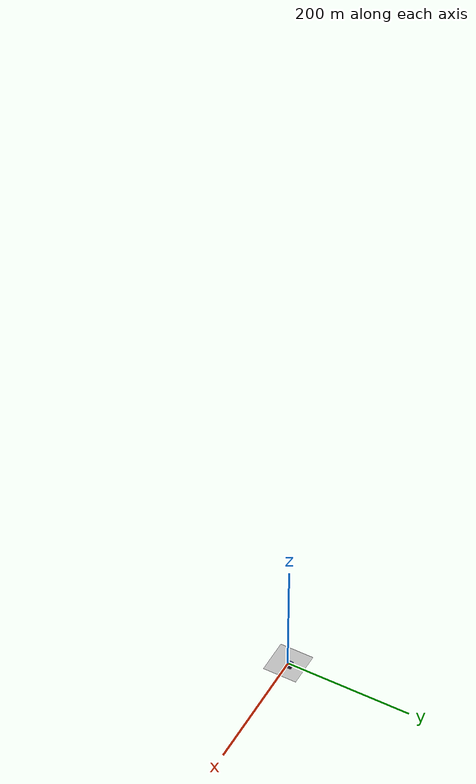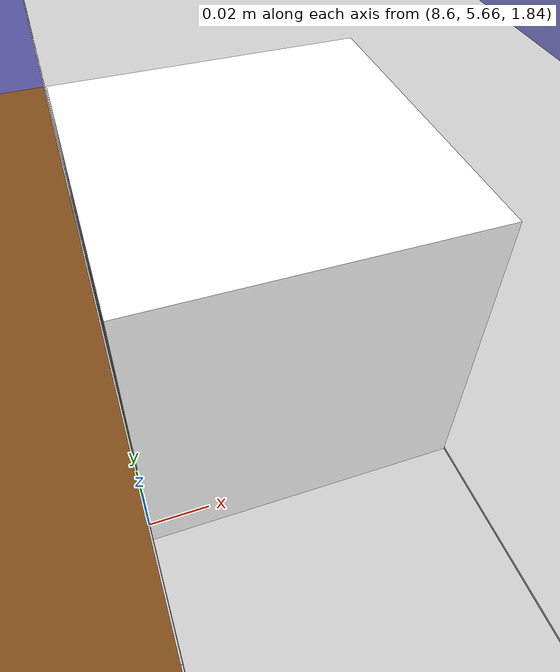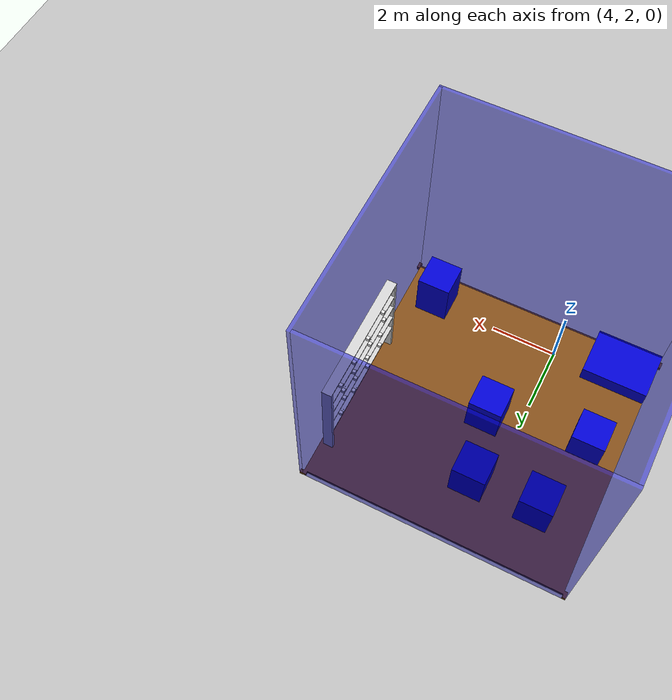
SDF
<?xml version="1.0" ?>
<?xml-model href="http://sdformat.org/schemas/root.xsd" schematypens="http://www.w3.org/2001/XMLSchema"?>
<sdf version="1.5">
  <world name="default">
    <plugin name="mrs_gazebo_static_transform_republisher_plugin" filename="libMrsGazeboCommonResources_StaticTransformRepublisher.so"/>
    <!-- coordinate system {-->
    <spherical_coordinates>
      <surface_model>EARTH_WGS84</surface_model>
      <latitude_deg>37.411802</latitude_deg>
      <longitude_deg>-121.995739</longitude_deg>
      <elevation>0.0</elevation>
      <heading_deg>0</heading_deg>
    </spherical_coordinates>

    <!-- physics engine {-->
    <physics name="default_physics" default="0" type="ode">
      <gravity>0 0 -9.8066</gravity>
      <ode>
        <solver>
          <type>quick</type>
          <iters>10</iters>
          <sor>1.3</sor>
          <use_dynamic_moi_rescaling>0</use_dynamic_moi_rescaling>
        </solver>
        <constraints>z
          <cfm>0</cfm>
          <erp>0.2</erp>
          <contact_max_correcting_vel>1000</contact_max_correcting_vel>
          <contact_surface_layer>0.001</contact_surface_layer>
        </constraints>
      </ode>
      <max_step_size>0.004</max_step_size>
      <real_time_factor>1</real_time_factor>
      <real_time_update_rate>250</real_time_update_rate>
      <magnetic_field>6.0e-06 2.3e-05 -4.2e-05</magnetic_field>
    </physics>

    <!-- turn off shadows {-->
    <scene>
      <shadows>false</shadows>
      <sky>
        <clouds/>
      </sky>
    </scene>

    <!-- sun {-->
    <light type="directional" name="sun">
      <cast_shadows>true</cast_shadows>
      <pose>250 250 600 0 0 0</pose>
      <diffuse>0.8 0.8 0.8 1</diffuse>
      <specular>0.2 0.2 0.2 1</specular>
      <attenuation>
        <range>1000</range>
        <constant>0.9</constant>
        <linear>0.01</linear>
        <quadratic>0.001</quadratic>
      </attenuation>
      <direction>0 0 -1</direction>
    </light>

    <!-- ground plane {-->
    <model name="ground_plane">
      <static>true</static>
      <link name="link">
        <collision name="collision">
          <pose>0 0 0 0 0 0</pose>
          <geometry>
            <plane>
              <normal>0 0 1</normal>
              <size>250 250</size>
            </plane>
          </geometry>
          <surface>
            <friction>
              <ode>
                <mu>1</mu>
                <mu2>1</mu2>
              </ode>
            </friction>
          </surface>
        </collision>
        <visual name="grass">
          <pose>0 0 0 0 0 0</pose>
          <cast_shadows>false</cast_shadows>
          <geometry>
            <mesh>
              <uri>file://grass_plane/meshes/grass_plane.dae</uri>
            </mesh>
          </geometry>
        </visual>
        <enable_wind>0</enable_wind>
      </link>
    </model>

    <!--THE ARENA MODEL -->
      <include >
        <uri>model://arena2</uri >
        <!--Pose ( x y z r p y ) -->
        <pose frame=''>1 1 0.0005 0 -0 0</pose >
      </include>

    <!-- THE VOID (for spawning objects out of camera view) {-->
    <model name='the_void'>
      <static>1</static>
      <link name='link'>
        <pose frame=''>0 0 0.1 0 -0 0</pose>
        <visual name='the_void'>
          <pose frame=''>0 0 2 0 -0 0</pose>
          <geometry>
            <sphere>
              <radius>0.25</radius>
            </sphere>
          </geometry>
          <material>
            <script>
              <uri>file://media/materials/scripts/Gazebo.material</uri>
              <name>Gazebo/Black</name>
            </script>
          </material>
        </visual>
        <self_collide>0</self_collide>
        <enable_wind>0</enable_wind>
        <kinematic>0</kinematic>
      </link>
      <pose frame=''>-1000 -1000 0 0 0 0</pose>
    </model>

    <!-- user camera {-->
    <gui>
      <camera name="camera">
        <pose>-60 -100 30 0 0.4 0.89</pose>
      </camera>
    </gui>

    <!-- GUI frame synchronization {-->
    <plugin name="mrs_gazebo_rviz_cam_synchronizer" filename="libMrsGazeboCommonResources_RvizCameraSynchronizer.so" >
      <target_frame_id>gazebo_user_camera</target_frame_id>
      <world_origin_frame_id>uav1/gps_origin</world_origin_frame_id>
      <frame_to_follow>uav1::base_link</frame_to_follow>
    </plugin>

    <!-- Load the plugin for the wind -->
    <plugin name='wind' filename='libgazebo_wind_plugin.so'>
      <frameId>base_link</frameId>
      <robotNamespace/>
      <xyzOffset>0 0 0</xyzOffset>
      <winDirectionMean>0 1 0</winDirectionMean>
      <windVelocityMean>20.0</windVelocityMean>
      <windGustDirection>0 0 0</windGustDirection>
      <windGustDuration>0</windGustDuration>
      <windGustStart>0</windGustStart>
      <windGustVelocityMean>0</windGustVelocityMean>
      <windPubTopic>world_wind</windPubTopic>
    </plugin>
  </world>
</sdf>

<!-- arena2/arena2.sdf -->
<sdf version='1.7'>
  <model name='arena2'>
    <link name='base_link'>
      <inertial>
        <pose>3.88372 3.91269 2.85219 0 -0 0</pose>
        <mass>322185</mass>
        <inertia>
          <ixx>4.96134e+06</ixx>
          <ixy>27988</ixy>
          <ixz>-115325</ixz>
          <iyy>5.04516e+06</iyy>
          <iyz>-82399.4</iyz>
          <izz>5.7618e+06</izz>
        </inertia>
      </inertial>
      <collision name='base_link_collision_collision'>
        <pose>0 0 0 0 -0 0</pose>
        <geometry>
          <mesh>
            <scale>0.001 0.001 0.001</scale>
            <uri>meshes/base_link.stl</uri>
          </mesh>
        </geometry>
      </collision>
      <collision name='base_link_fixed_joint_lump__piso_collision_collision_1'>
        <pose>-0 -0 0.1 -0 -0 0</pose>
        <geometry>
          <mesh>
            <scale>0.001 0.001 0.001</scale>
            <uri>meshes/piso.stl</uri>
          </mesh>
        </geometry>
      </collision>
      <collision name='base_link_fixed_joint_lump__base_movel_3_collision_collision_2'>
        <pose>-0.2 0.1 0.1 -0 -0 -0</pose>
        <geometry>
          <mesh>
            <scale>0.001 0.001 0.001</scale>
            <uri>meshes/base_movel_3.stl</uri>
          </mesh>
        </geometry>
      </collision>
      <collision name='base_link_fixed_joint_lump__base_movel_2_collision_collision_3'>
        <pose>-0.1 -0.1 0.1001 -0 -0 -0</pose>
        <geometry>
          <mesh>
            <scale>0.001 0.001 0.001</scale>
            <uri>meshes/base_movel_2.stl</uri>
          </mesh>
        </geometry>
      </collision>
      <collision name='base_link_fixed_joint_lump__Base_movel_1_collision_collision_4'>
        <pose>-0.1 -0.1 0.1001 -0 -0 -0</pose>
        <geometry>
          <mesh>
            <scale>0.001 0.001 0.001</scale>
            <uri>meshes/Base_movel_1.stl</uri>
          </mesh>
        </geometry>
      </collision>
      <collision name='base_link_fixed_joint_lump__Base_suspensa_1.5_collision_collision_5'>
        <pose>-0.1 -0.1 0.099 -0 -0 -0</pose>
        <geometry>
          <mesh>
            <scale>0.001 0.001 0.001</scale>
            <uri>meshes/Base_suspensa_1.5.stl</uri>
          </mesh>
        </geometry>
      </collision>
      <collision name='base_link_fixed_joint_lump__base_supensa_1.0_collision_collision_6'>
        <pose>-0.1 -0.1 0.099 -0 -0 -0</pose>
        <geometry>
          <mesh>
            <scale>0.001 0.001 0.001</scale>
            <uri>meshes/base_supensa_1.0.stl</uri>
          </mesh>
        </geometry>
      </collision>
      <collision name='base_link_fixed_joint_lump__prateleira_collision_collision_7'>
        <pose>0 0 0 -0 0 0</pose>
        <geometry>
          <mesh>
            <scale>0.001 0.001 0.001</scale>
            <uri>meshes/prateleira.stl</uri>
          </mesh>
        </geometry>
      </collision>
      <collision name='base_link_fixed_joint_lump__cubo_A2_collision_collision_8'>
        <pose>6.3 11.1 -6.351 -3.14159 -1.5708 0</pose>
        <geometry>
          <mesh>
            <scale>0.001 0.001 0.001</scale>
            <uri>meshes/cubo_A2.stl</uri>
          </mesh>
        </geometry>
      </collision>
      <collision name='base_link_fixed_joint_lump__cubo_A2b_collision_collision_9'>
        <pose>-0.1 -0.1 0.1 0 -0 -0</pose>
        <geometry>
          <mesh>
            <scale>0.001 0.001 0.001</scale>
            <uri>meshes/cubo_A2b.stl</uri>
          </mesh>
        </geometry>
      </collision>
      <collision name='base_link_fixed_joint_lump__cubo_A3_collision_collision_10'>
        <pose>6.3 12.7 -6.351 -3.14159 -1.5708 0</pose>
        <geometry>
          <mesh>
            <scale>0.001 0.001 0.001</scale>
            <uri>meshes/cubo_A3.stl</uri>
          </mesh>
        </geometry>
      </collision>
      <collision name='base_link_fixed_joint_lump__cubo_A3b_collision_collision_11'>
        <pose>-0.1 -0.100169 0.1 -0 -0 -0</pose>
        <geometry>
          <mesh>
            <scale>0.001 0.001 0.001</scale>
            <uri>meshes/cubo_A3b.stl</uri>
          </mesh>
        </geometry>
      </collision>
      <collision name='base_link_fixed_joint_lump__cubo_A0_collision_collision_12'>
        <pose>-0 -0 -0.051 -0 0 0</pose>
        <geometry>
          <mesh>
            <scale>0.001 0.001 0.001</scale>
            <uri>meshes/cubo_A0.stl</uri>
          </mesh>
        </geometry>
      </collision>
      <collision name='base_link_fixed_joint_lump__cubo_A0b_collision_collision_13'>
        <pose>-0.1 -0.1002 0.1 -0 0 -0</pose>
        <geometry>
          <mesh>
            <scale>0.001 0.001 0.001</scale>
            <uri>meshes/cubo_A0b.stl</uri>
          </mesh>
        </geometry>
      </collision>
      <collision name='base_link_fixed_joint_lump__cubo_A1_collision_collision_14'>
        <pose>6.3 9.3 -6.351 -3.14159 -1.5708 0</pose>
        <geometry>
          <mesh>
            <scale>0.001 0.001 0.001</scale>
            <uri>meshes/cubo_A1.stl</uri>
          </mesh>
        </geometry>
      </collision>
      <collision name='base_link_fixed_joint_lump__cubo_A1b_collision_collision_15'>
        <pose>-0.1 -0.10016 0.1 -0 -0 -0</pose>
        <geometry>
          <mesh>
            <scale>0.001 0.001 0.001</scale>
            <uri>meshes/cubo_A1b.stl</uri>
          </mesh>
        </geometry>
      </collision>
      <collision name='base_link_fixed_joint_lump__cubo_B0_collision_collision_16'>
        <pose>5.75 12.3 -5.751 -3.14159 -1.5708 0</pose>
        <geometry>
          <mesh>
            <scale>0.001 0.001 0.001</scale>
            <uri>meshes/cubo_B0.stl</uri>
          </mesh>
        </geometry>
      </collision>
      <collision name='base_link_fixed_joint_lump__cubo_B0b_collision_collision_17'>
        <pose>-0.1 -0.100182 0.1 0 -0 -0</pose>
        <geometry>
          <mesh>
            <scale>0.001 0.001 0.001</scale>
            <uri>meshes/cubo_B0b.stl</uri>
          </mesh>
        </geometry>
      </collision>
      <collision name='base_link_fixed_joint_lump__cubo_B1_collision_collision_18'>
        <pose>5.75 10.9 -5.751 -3.14159 -1.5708 0</pose>
        <geometry>
          <mesh>
            <scale>0.001 0.001 0.001</scale>
            <uri>meshes/cubo_B1.stl</uri>
          </mesh>
        </geometry>
      </collision>
      <collision name='base_link_fixed_joint_lump__cubo_B1b_collision_collision_19'>
        <pose>-0.1 -0.100186 0.1 0 -0 -0</pose>
        <geometry>
          <mesh>
            <scale>0.001 0.001 0.001</scale>
            <uri>meshes/cubo_B1b.stl</uri>
          </mesh>
        </geometry>
      </collision>
      <collision name='base_link_fixed_joint_lump__cubo_B2_collision_collision_20'>
        <pose>9.55 -0 -5.751 0 -1.5708 0</pose>
        <geometry>
          <mesh>
            <scale>0.001 0.001 0.001</scale>
            <uri>meshes/cubo_B2.stl</uri>
          </mesh>
        </geometry>
      </collision>
      <collision name='base_link_fixed_joint_lump__cubo_B2b_collision_collision_21'>
        <pose>-0.1 -0.100213 0.1 -0 0 -0</pose>
        <geometry>
          <mesh>
            <scale>0.001 0.001 0.001</scale>
            <uri>meshes/cubo_B2b.stl</uri>
          </mesh>
        </geometry>
      </collision>
      <collision name='base_link_fixed_joint_lump__cubo_B3_collision_collision_22'>
        <pose>9.55 -0 -5.751 0 -1.5708 0</pose>
        <geometry>
          <mesh>
            <scale>0.001 0.001 0.001</scale>
            <uri>meshes/cubo_B3.stl</uri>
          </mesh>
        </geometry>
      </collision>
      <collision name='base_link_fixed_joint_lump__cubo_B3b_collision_collision_23'>
        <pose>-0.1 -0.100181 0.1 -0 0 -0</pose>
        <geometry>
          <mesh>
            <scale>0.001 0.001 0.001</scale>
            <uri>meshes/cubo_B3b.stl</uri>
          </mesh>
        </geometry>
      </collision>
      <collision name='base_link_fixed_joint_lump__cubo_C0_collision_collision_24'>
        <pose>5.2 12.4114 -5.201 -3.14159 -1.5708 0</pose>
        <geometry>
          <mesh>
            <scale>0.001 0.001 0.001</scale>
            <uri>meshes/cubo_C0.stl</uri>
          </mesh>
        </geometry>
      </collision>
      <collision name='base_link_fixed_joint_lump__cubo_C0b_collision_collision_25'>
        <pose>-0.1 -0.100085 0.1 -0 -0 -0</pose>
        <geometry>
          <mesh>
            <scale>0.001 0.001 0.001</scale>
            <uri>meshes/cubo_C0b.stl</uri>
          </mesh>
        </geometry>
      </collision>
      <collision name='base_link_fixed_joint_lump__cubo_C1_collision_collision_26'>
        <pose>5.2 11.1 -5.201 -3.14159 -1.5708 0</pose>
        <geometry>
          <mesh>
            <scale>0.001 0.001 0.001</scale>
            <uri>meshes/cubo_C1.stl</uri>
          </mesh>
        </geometry>
      </collision>
      <collision name='base_link_fixed_joint_lump__cubo_C1b_collision_collision_27'>
        <pose>-0.1 -0.09994 0.1 0 -0 -0</pose>
        <geometry>
          <mesh>
            <scale>0.001 0.001 0.001</scale>
            <uri>meshes/cubo_C1b.stl</uri>
          </mesh>
        </geometry>
      </collision>
      <collision name='base_link_fixed_joint_lump__cubo_C2_collision_collision_28'>
        <pose>5.2 9.25 -5.201 -3.14159 -1.5708 0</pose>
        <geometry>
          <mesh>
            <scale>0.001 0.001 0.001</scale>
            <uri>meshes/cubo_C2.stl</uri>
          </mesh>
        </geometry>
      </collision>
      <collision name='base_link_fixed_joint_lump__cubo_C2b_collision_collision_29'>
        <pose>-0.1 -0.100205 0.1 -0 -0 -0</pose>
        <geometry>
          <mesh>
            <scale>0.001 0.001 0.001</scale>
            <uri>meshes/cubo_C2b.stl</uri>
          </mesh>
        </geometry>
      </collision>
      <collision name='base_link_fixed_joint_lump__cubo_C3_collision_collision_30'>
        <pose>5.2 7.4 -5.201 -3.14159 -1.5708 0</pose>
        <geometry>
          <mesh>
            <scale>0.001 0.001 0.001</scale>
            <uri>meshes/cubo_C3.stl</uri>
          </mesh>
        </geometry>
      </collision>
      <collision name='base_link_fixed_joint_lump__cubo_C3b_collision_collision_31'>
        <pose>-0.1 -0.099996 0.1 0 -0 -0</pose>
        <geometry>
          <mesh>
            <scale>0.001 0.001 0.001</scale>
            <uri>meshes/cubo_C3b.stl</uri>
          </mesh>
        </geometry>
      </collision>
      <collision name='base_link_fixed_joint_lump__cubo_D0_collision_collision_32'>
        <pose>4.65 12.7 -4.651 -3.14159 -1.5708 0</pose>
        <geometry>
          <mesh>
            <scale>0.001 0.001 0.001</scale>
            <uri>meshes/cubo_D0.stl</uri>
          </mesh>
        </geometry>
      </collision>
      <collision name='base_link_fixed_joint_lump__cubo_D0b_collision_collision_33'>
        <pose>-0.1 -0.100258 0.1 0 -0 -0</pose>
        <geometry>
          <mesh>
            <scale>0.001 0.001 0.001</scale>
            <uri>meshes/cubo_D0b.stl</uri>
          </mesh>
        </geometry>
      </collision>
      <collision name='base_link_fixed_joint_lump__cubo_D1_collision_collision_34'>
        <pose>4.65 11.1 -4.651 -3.14159 -1.5708 0</pose>
        <geometry>
          <mesh>
            <scale>0.001 0.001 0.001</scale>
            <uri>meshes/cubo_D1.stl</uri>
          </mesh>
        </geometry>
      </collision>
      <collision name='base_link_fixed_joint_lump__cubo_D1b_collision_collision_35'>
        <pose>-0.1 -0.100211 0.1 0 -0 -0</pose>
        <geometry>
          <mesh>
            <scale>0.001 0.001 0.001</scale>
            <uri>meshes/cubo_D1b.stl</uri>
          </mesh>
        </geometry>
      </collision>
      <collision name='base_link_fixed_joint_lump__cubo_D2_collision_collision_36'>
        <pose>4.65 9.4 -4.651 -3.14159 -1.5708 0</pose>
        <geometry>
          <mesh>
            <scale>0.001 0.001 0.001</scale>
            <uri>meshes/cubo_D2.stl</uri>
          </mesh>
        </geometry>
      </collision>
      <collision name='base_link_fixed_joint_lump__cubo_D2b_collision_collision_37'>
        <pose>-0.1 -0.100191 0.1 0 -0 -0</pose>
        <geometry>
          <mesh>
            <scale>0.001 0.001 0.001</scale>
            <uri>meshes/cubo_D2b.stl</uri>
          </mesh>
        </geometry>
      </collision>
      <collision name='base_link_fixed_joint_lump__cubo_D3_collision_collision_38'>
        <pose>4.65 7.5 -4.651 -3.14159 -1.5708 0</pose>
        <geometry>
          <mesh>
            <scale>0.001 0.001 0.001</scale>
            <uri>meshes/cubo_D3.stl</uri>
          </mesh>
        </geometry>
      </collision>
      <collision name='base_link_fixed_joint_lump__cubo_D3b_collision_collision_39'>
        <pose>-0.1 -0.100186 0.1 0 -0 -0</pose>
        <geometry>
          <mesh>
            <scale>0.001 0.001 0.001</scale>
            <uri>meshes/cubo_D3b.stl</uri>
          </mesh>
        </geometry>
      </collision>
      <collision name='base_link_fixed_joint_lump__Base_de_Takeoff_collision_collision_40'>
        <pose>-0 -0 -0.002 0 -0 0</pose>
        <geometry>
          <mesh>
            <scale>0.001 0.001 0.001</scale>
            <uri>meshes/Base_de_Takeoff.stl</uri>
          </mesh>
        </geometry>
      </collision>
      <collision name='base_link_fixed_joint_lump__parede2_collision_collision_41'>
        <pose>0 -0 0 0 -0 0</pose>
        <geometry>
          <mesh>
            <scale>0.001 0.001 0.001</scale>
            <uri>meshes/parede2.stl</uri>
          </mesh>
        </geometry>
      </collision>
      <collision name='base_link_fixed_joint_lump__parede3_collision_collision_42'>
        <pose>-0 -0 -0 0 -0 0</pose>
        <geometry>
          <mesh>
            <scale>0.001 0.001 0.001</scale>
            <uri>meshes/parede3.stl</uri>
          </mesh>
        </geometry>
      </collision>
      <collision name='base_link_fixed_joint_lump__parede4_collision_collision_43'>
        <pose>-0 0.05 -0 0 -0 0</pose>
        <geometry>
          <mesh>
            <scale>0.001 0.001 0.001</scale>
            <uri>meshes/parede4.stl</uri>
          </mesh>
        </geometry>
      </collision>
      <visual name='base_link_visual_visual'>
        <pose>0 0 0 0 -0 0</pose>
        <geometry>
          <mesh>
            <scale>0.001 0.001 0.001</scale>
            <uri>meshes/base_link.stl</uri>
          </mesh>
        </geometry>
        <material>
          <ambient>0.0 0.0 1.0 0.5</ambient>  <!-- Cor ambiente (R, G, B, A) -->
          <diffuse>0.0 0.0 0.8 0.5</diffuse>  <!-- Cor difusa (R, G, B, A) -->
          <specular>0.5 0.5 0.8 0.5</specular> <!-- Cor especular (brilho) -->
          <emissive>0.0 0.0 0.3 0.5</emissive> <!-- Cor emissiva -->
        </material>
      </visual>
      <visual name='base_link_fixed_joint_lump__piso_visual_visual_1'>
        <pose>-0 -0 0.1 -0 -0 0</pose>
        <geometry>
          <mesh>
            <scale>0.001 0.001 0.001</scale>
            <uri>meshes/piso.stl</uri>
          </mesh>
        </geometry>
        <material>
          <ambient>0.6 0.4 0.2 1</ambient>  <!-- Cor ambiente (R, G, B, A) -->
          <diffuse>0.5 0.3 0.1 1</diffuse>  <!-- Cor difusa (R, G, B, A) -->
          <specular>0.3 0.2 0.1 1</specular> <!-- Cor especular (brilho) -->
          <emissive>0.2 0.1 0.0 1</emissive> <!-- Cor emissiva -->
        </material>
      </visual>
      <visual name='base_link_fixed_joint_lump__base_movel_3_visual_visual_2'>
        <pose>-0.2 0.1 0.1 -0 -0 -0</pose>
        <geometry>
          <mesh>
            <scale>0.001 0.001 0.001</scale>
            <uri>meshes/base_movel_3.stl</uri>
          </mesh>
        </geometry>
        <material>
          <ambient>0.0 0.0 1.0 1</ambient>
          <diffuse>0.0 0.0 0.8 1</diffuse>
          <specular>0.5 0.5 0.8 1</specular>
          <emissive>0.0 0.0 0.3 1</emissive>
        </material>
      </visual>
      <visual name='base_link_fixed_joint_lump__base_movel_2_visual_visual_3'>
        <pose>-0.1 -0.1 0.1001 -0 -0 -0</pose>
        <geometry>
          <mesh>
            <scale>0.001 0.001 0.001</scale>
            <uri>meshes/base_movel_2.stl</uri>
          </mesh>
        </geometry>
        <material>
          <ambient>0.0 0.0 1.0 1</ambient>
          <diffuse>0.0 0.0 0.8 1</diffuse>
          <specular>0.5 0.5 0.8 1</specular>
          <emissive>0.0 0.0 0.3 1</emissive>
        </material>
      </visual>
      <visual name='base_link_fixed_joint_lump__Base_movel_1_visual_visual_4'>
        <pose>-0.1 -0.1 0.1001 -0 -0 -0</pose>
        <geometry>
          <mesh>
            <scale>0.001 0.001 0.001</scale>
            <uri>meshes/Base_movel_1.stl</uri>
          </mesh>
        </geometry>
        <material>
          <ambient>0.0 0.0 1.0 1</ambient>
          <diffuse>0.0 0.0 0.8 1</diffuse>
          <specular>0.5 0.5 0.8 1</specular>
          <emissive>0.0 0.0 0.3 1</emissive>
        </material>
      </visual>
      <visual name='base_link_fixed_joint_lump__Base_suspensa_1.5_visual_visual_5'>
        <pose>-0.1 -0.1 0.099 -0 -0 -0</pose>
        <geometry>
          <mesh>
            <scale>0.001 0.001 0.001</scale>
            <uri>meshes/Base_suspensa_1.5.stl</uri>
          </mesh>
        </geometry>
        <material>
          <ambient>0.0 0.0 1.0 1</ambient>
          <diffuse>0.0 0.0 0.8 1</diffuse>
          <specular>0.5 0.5 0.8 1</specular>
          <emissive>0.0 0.0 0.3 1</emissive>
        </material>
      </visual>
      <visual name='base_link_fixed_joint_lump__base_supensa_1.0_visual_visual_6'>
        <pose>-0.1 -0.1 0.099 -0 -0 -0</pose>
        <geometry>
          <mesh>
            <scale>0.001 0.001 0.001</scale>
            <uri>meshes/base_supensa_1.0.stl</uri>
          </mesh>
        </geometry>
        <material>
          <ambient>0.0 0.0 1.0 1</ambient>
          <diffuse>0.0 0.0 0.8 1</diffuse>
          <specular>0.5 0.5 0.8 1</specular>
          <emissive>0.0 0.0 0.3 1</emissive>
        </material>
      </visual>
      <visual name='base_link_fixed_joint_lump__prateleira_visual_visual_7'>
        <pose>0 0 0 -0 0 0</pose>
        <geometry>
          <mesh>
            <scale>0.001 0.001 0.001</scale>
            <uri>meshes/prateleira.stl</uri>
          </mesh>
        </geometry>
        <material>
          <ambient>0.7 0.7 0.7 1</ambient>
          <diffuse>0.8 0.8 0.8 1</diffuse>
          <specular>1.0 1.0 1.0 1</specular>
          <emissive>0.3 0.3 0.3 1</emissive>
        </material>
      </visual>
      <visual name='base_link_fixed_joint_lump__cubo_A2_visual_visual_8'>
        <pose>6.3 11.1 -6.351 -3.14159 -1.5708 0</pose>
        <geometry>
          <mesh>
            <scale>0.001 0.001 0.001</scale>
            <uri>meshes/cubo_A2.stl</uri>
          </mesh>
        </geometry>
        <material>
          <ambient>1 1 1 1</ambient>
          <diffuse>1 1 1 1</diffuse>
          <specular>1 1 1 1</specular>
          <emissive>0 0 0 1</emissive>
        </material>
      </visual>
      <visual name='base_link_fixed_joint_lump__cubo_A2b_visual_visual_9'>
        <pose>-0.1 -0.1 0.1 0 -0 -0</pose>
        <geometry>
          <mesh>
            <scale>0.001 0.001 0.001</scale>
            <uri>meshes/cubo_A2b.stl</uri>
          </mesh>
        </geometry>
        <material>
          <ambient>0 0 0 1</ambient>
          <diffuse>0 0 0 1</diffuse>
          <specular>0 0 0 1</specular>
          <emissive>0 0 0 1</emissive>
        </material>
      </visual>
      <visual name='base_link_fixed_joint_lump__cubo_A3_visual_visual_10'>
        <pose>6.3 12.7 -6.351 -3.14159 -1.5708 0</pose>
        <geometry>
          <mesh>
            <scale>0.001 0.001 0.001</scale>
            <uri>meshes/cubo_A3.stl</uri>
          </mesh>
        </geometry>
        <material>
          <ambient>1 1 1 1</ambient>
          <diffuse>1 1 1 1</diffuse>
          <specular>1 1 1 1</specular>
          <emissive>0 0 0 1</emissive>
        </material>
      </visual>
      <visual name='base_link_fixed_joint_lump__cubo_A3b_visual_visual_11'>
        <pose>-0.1 -0.100169 0.1 -0 -0 -0</pose>
        <geometry>
          <mesh>
            <scale>0.001 0.001 0.001</scale>
            <uri>meshes/cubo_A3b.stl</uri>
          </mesh>
        </geometry>
        <material>
          <ambient>0 0 0 1</ambient>
          <diffuse>0 0 0 1</diffuse>
          <specular>0 0 0 1</specular>
          <emissive>0 0 0 1</emissive>
        </material>
      </visual>
      <visual name='base_link_fixed_joint_lump__cubo_A0_visual_visual_12'>
        <pose>-0 -0 -0.051 -0 0 0</pose>
        <geometry>
          <mesh>
            <scale>0.001 0.001 0.001</scale>
            <uri>meshes/cubo_A0.stl</uri>
          </mesh>
        </geometry>
        <material>
          <ambient>1 1 1 1</ambient>
          <diffuse>1 1 1 1</diffuse>
          <specular>1 1 1 1</specular>
          <emissive>0 0 0 1</emissive>
        </material>
      </visual>
      <visual name='base_link_fixed_joint_lump__cubo_A0b_visual_visual_13'>
        <pose>-0.1 -0.1002 0.1 -0 0 -0</pose>
        <geometry>
          <mesh>
            <scale>0.001 0.001 0.001</scale>
            <uri>meshes/cubo_A0b.stl</uri>
          </mesh>
        </geometry>
        <material>
          <ambient>0 0 0 1</ambient>
          <diffuse>0 0 0 1</diffuse>
          <specular>0 0 0 1</specular>
          <emissive>0 0 0 1</emissive>
        </material>
      </visual>
      <visual name='base_link_fixed_joint_lump__cubo_A1_visual_visual_14'>
        <pose>6.3 9.3 -6.351 -3.14159 -1.5708 0</pose>
        <geometry>
          <mesh>
            <scale>0.001 0.001 0.001</scale>
            <uri>meshes/cubo_A1.stl</uri>
          </mesh>
        </geometry>
        <material>
          <ambient>1 1 1 1</ambient>
          <diffuse>1 1 1 1</diffuse>
          <specular>1 1 1 1</specular>
          <emissive>0 0 0 1</emissive>
        </material>
      </visual>
      <visual name='base_link_fixed_joint_lump__cubo_A1b_visual_visual_15'>
        <pose>-0.1 -0.10016 0.1 -0 -0 -0</pose>
        <geometry>
          <mesh>
            <scale>0.001 0.001 0.001</scale>
            <uri>meshes/cubo_A1b.stl</uri>
          </mesh>
        </geometry>
        <material>
          <ambient>0 0 0 1</ambient>
          <diffuse>0 0 0 1</diffuse>
          <specular>0 0 0 1</specular>
          <emissive>0 0 0 1</emissive>
        </material>
      </visual>
      <visual name='base_link_fixed_joint_lump__cubo_B0_visual_visual_16'>
        <pose>5.75 12.3 -5.751 -3.14159 -1.5708 0</pose>
        <geometry>
          <mesh>
            <scale>0.001 0.001 0.001</scale>
            <uri>meshes/cubo_B0.stl</uri>
          </mesh>
        </geometry>
        <material>
          <ambient>1 1 1 1</ambient>
          <diffuse>1 1 1 1</diffuse>
          <specular>1 1 1 1</specular>
          <emissive>0 0 0 1</emissive>
        </material>
      </visual>
      <visual name='base_link_fixed_joint_lump__cubo_B0b_visual_visual_17'>
        <pose>-0.1 -0.100182 0.1 0 -0 -0</pose>
        <geometry>
          <mesh>
            <scale>0.001 0.001 0.001</scale>
            <uri>meshes/cubo_B0b.stl</uri>
          </mesh>
        </geometry>
        <material>
          <ambient>0 0 0 1</ambient>
          <diffuse>0 0 0 1</diffuse>
          <specular>0 0 0 1</specular>
          <emissive>0 0 0 1</emissive>
        </material>
      </visual>
      <visual name='base_link_fixed_joint_lump__cubo_B1_visual_visual_18'>
        <pose>5.75 10.9 -5.751 -3.14159 -1.5708 0</pose>
        <geometry>
          <mesh>
            <scale>0.001 0.001 0.001</scale>
            <uri>meshes/cubo_B1.stl</uri>
          </mesh>
        </geometry>
        <material>
          <ambient>1 1 1 1</ambient>
          <diffuse>1 1 1 1</diffuse>
          <specular>1 1 1 1</specular>
          <emissive>0 0 0 1</emissive>
        </material>
      </visual>
      <visual name='base_link_fixed_joint_lump__cubo_B1b_visual_visual_19'>
        <pose>-0.1 -0.100186 0.1 0 -0 -0</pose>
        <geometry>
          <mesh>
            <scale>0.001 0.001 0.001</scale>
            <uri>meshes/cubo_B1b.stl</uri>
          </mesh>
        </geometry>
        <material>
          <ambient>0 0 0 1</ambient>
          <diffuse>0 0 0 1</diffuse>
          <specular>0 0 0 1</specular>
          <emissive>0 0 0 1</emissive>
        </material>
      </visual>
      <visual name='base_link_fixed_joint_lump__cubo_B2_visual_visual_20'>
        <pose>9.55 -0 -5.751 0 -1.5708 0</pose>
        <geometry>
          <mesh>
            <scale>0.001 0.001 0.001</scale>
            <uri>meshes/cubo_B2.stl</uri>
          </mesh>
        </geometry>
        <material>
          <ambient>1 1 1 1</ambient>
          <diffuse>1 1 1 1</diffuse>
          <specular>1 1 1 1</specular>
          <emissive>0 0 0 1</emissive>
        </material>
      </visual>
      <visual name='base_link_fixed_joint_lump__cubo_B2b_visual_visual_21'>
        <pose>-0.1 -0.100213 0.1 -0 0 -0</pose>
        <geometry>
          <mesh>
            <scale>0.001 0.001 0.001</scale>
            <uri>meshes/cubo_B2b.stl</uri>
          </mesh>
        </geometry>
        <material>
          <ambient>0 0 0 1</ambient>
          <diffuse>0 0 0 1</diffuse>
          <specular>0 0 0 1</specular>
          <emissive>0 0 0 1</emissive>
        </material>
      </visual>
      <visual name='base_link_fixed_joint_lump__cubo_B3_visual_visual_22'>
        <pose>9.55 -0 -5.751 0 -1.5708 0</pose>
        <geometry>
          <mesh>
            <scale>0.001 0.001 0.001</scale>
            <uri>meshes/cubo_B3.stl</uri>
          </mesh>
        </geometry>
        <material>
          <ambient>1 1 1 1</ambient>
          <diffuse>1 1 1 1</diffuse>
          <specular>1 1 1 1</specular>
          <emissive>0 0 0 1</emissive>
        </material>
      </visual>
      <visual name='base_link_fixed_joint_lump__cubo_B3b_visual_visual_23'>
        <pose>-0.1 -0.100181 0.1 -0 0 -0</pose>
        <geometry>
          <mesh>
            <scale>0.001 0.001 0.001</scale>
            <uri>meshes/cubo_B3b.stl</uri>
          </mesh>
        </geometry>
        <material>
          <ambient>0 0 0 1</ambient>
          <diffuse>0 0 0 1</diffuse>
          <specular>0 0 0 1</specular>
          <emissive>0 0 0 1</emissive>
        </material>
      </visual>
      <visual name='base_link_fixed_joint_lump__cubo_C0_visual_visual_24'>
        <pose>5.2 12.4114 -5.201 -3.14159 -1.5708 0</pose>
        <geometry>
          <mesh>
            <scale>0.001 0.001 0.001</scale>
            <uri>meshes/cubo_C0.stl</uri>
          </mesh>
        </geometry>
        <material>
          <ambient>1 1 1 1</ambient>
          <diffuse>1 1 1 1</diffuse>
          <specular>1 1 1 1</specular>
          <emissive>0 0 0 1</emissive>
        </material>
      </visual>
      <visual name='base_link_fixed_joint_lump__cubo_C0b_visual_visual_25'>
        <pose>-0.1 -0.100085 0.1 -0 -0 -0</pose>
        <geometry>
          <mesh>
            <scale>0.001 0.001 0.001</scale>
            <uri>meshes/cubo_C0b.stl</uri>
          </mesh>
        </geometry>
        <material>
          <ambient>0 0 0 1</ambient>
          <diffuse>0 0 0 1</diffuse>
          <specular>0 0 0 1</specular>
          <emissive>0 0 0 1</emissive>
        </material>
      </visual>
      <visual name='base_link_fixed_joint_lump__cubo_C1_visual_visual_26'>
        <pose>5.2 11.1 -5.201 -3.14159 -1.5708 0</pose>
        <geometry>
          <mesh>
            <scale>0.001 0.001 0.001</scale>
            <uri>meshes/cubo_C1.stl</uri>
          </mesh>
        </geometry>
        <material>
          <ambient>1 1 1 1</ambient>
          <diffuse>1 1 1 1</diffuse>
          <specular>1 1 1 1</specular>
          <emissive>0 0 0 1</emissive>
        </material>
      </visual>
      <visual name='base_link_fixed_joint_lump__cubo_C1b_visual_visual_27'>
        <pose>-0.1 -0.09994 0.1 0 -0 -0</pose>
        <geometry>
          <mesh>
            <scale>0.001 0.001 0.001</scale>
            <uri>meshes/cubo_C1b.stl</uri>
          </mesh>
        </geometry>
        <material>
          <ambient>0 0 0 1</ambient>
          <diffuse>0 0 0 1</diffuse>
          <specular>0 0 0 1</specular>
          <emissive>0 0 0 1</emissive>
        </material>
      </visual>
      <visual name='base_link_fixed_joint_lump__cubo_C2_visual_visual_28'>
        <pose>5.2 9.25 -5.201 -3.14159 -1.5708 0</pose>
        <geometry>
          <mesh>
            <scale>0.001 0.001 0.001</scale>
            <uri>meshes/cubo_C2.stl</uri>
          </mesh>
        </geometry>
        <material>
          <ambient>1 1 1 1</ambient>
          <diffuse>1 1 1 1</diffuse>
          <specular>1 1 1 1</specular>
          <emissive>0 0 0 1</emissive>
        </material>
      </visual>
      <visual name='base_link_fixed_joint_lump__cubo_C2b_visual_visual_29'>
        <pose>-0.1 -0.100205 0.1 -0 -0 -0</pose>
        <geometry>
          <mesh>
            <scale>0.001 0.001 0.001</scale>
            <uri>meshes/cubo_C2b.stl</uri>
          </mesh>
        </geometry>
        <material>
          <ambient>0 0 0 1</ambient>
          <diffuse>0 0 0 1</diffuse>
          <specular>0 0 0 1</specular>
          <emissive>0 0 0 1</emissive>
        </material>
      </visual>
      <visual name='base_link_fixed_joint_lump__cubo_C3_visual_visual_30'>
        <pose>5.2 7.4 -5.201 -3.14159 -1.5708 0</pose>
        <geometry>
          <mesh>
            <scale>0.001 0.001 0.001</scale>
            <uri>meshes/cubo_C3.stl</uri>
          </mesh>
        </geometry>
        <material>
          <ambient>1 1 1 1</ambient>
          <diffuse>1 1 1 1</diffuse>
          <specular>1 1 1 1</specular>
          <emissive>0 0 0 1</emissive>
        </material>
      </visual>
      <visual name='base_link_fixed_joint_lump__cubo_C3b_visual_visual_31'>
        <pose>-0.1 -0.099996 0.1 0 -0 -0</pose>
        <geometry>
          <mesh>
            <scale>0.001 0.001 0.001</scale>
            <uri>meshes/cubo_C3b.stl</uri>
          </mesh>
        </geometry>
        <material>
          <ambient>0 0 0 1</ambient>
          <diffuse>0 0 0 1</diffuse>
          <specular>0 0 0 1</specular>
          <emissive>0 0 0 1</emissive>
        </material>
      </visual>
      <visual name='base_link_fixed_joint_lump__cubo_D0_visual_visual_32'>
        <pose>4.65 12.7 -4.651 -3.14159 -1.5708 0</pose>
        <geometry>
          <mesh>
            <scale>0.001 0.001 0.001</scale>
            <uri>meshes/cubo_D0.stl</uri>
          </mesh>
        </geometry>
        <material>
          <ambient>1 1 1 1</ambient>
          <diffuse>1 1 1 1</diffuse>
          <specular>1 1 1 1</specular>
          <emissive>0 0 0 1</emissive>
        </material>
      </visual>
      <visual name='base_link_fixed_joint_lump__cubo_D0b_visual_visual_33'>
        <pose>-0.1 -0.100258 0.1 0 -0 -0</pose>
        <geometry>
          <mesh>
            <scale>0.001 0.001 0.001</scale>
            <uri>meshes/cubo_D0b.stl</uri>
          </mesh>
        </geometry>
        <material>
          <ambient>0 0 0 1</ambient>
          <diffuse>0 0 0 1</diffuse>
          <specular>0 0 0 1</specular>
          <emissive>0 0 0 1</emissive>
        </material>
      </visual>
      <visual name='base_link_fixed_joint_lump__cubo_D1_visual_visual_34'>
        <pose>4.65 11.1 -4.651 -3.14159 -1.5708 0</pose>
        <geometry>
          <mesh>
            <scale>0.001 0.001 0.001</scale>
            <uri>meshes/cubo_D1.stl</uri>
          </mesh>
        </geometry>
        <material>
          <ambient>1 1 1 1</ambient>
          <diffuse>1 1 1 1</diffuse>
          <specular>1 1 1 1</specular>
          <emissive>0 0 0 1</emissive>
        </material>
      </visual>
      <visual name='base_link_fixed_joint_lump__cubo_D1b_visual_visual_35'>
        <pose>-0.1 -0.100211 0.1 0 -0 -0</pose>
        <geometry>
          <mesh>
            <scale>0.001 0.001 0.001</scale>
            <uri>meshes/cubo_D1b.stl</uri>
          </mesh>
        </geometry>
        <material>
          <ambient>0 0 0 1</ambient>
          <diffuse>0 0 0 1</diffuse>
          <specular>0 0 0 1</specular>
          <emissive>0 0 0 1</emissive>
        </material>
      </visual>
      <visual name='base_link_fixed_joint_lump__cubo_D2_visual_visual_36'>
        <pose>4.65 9.4 -4.651 -3.14159 -1.5708 0</pose>
        <geometry>
          <mesh>
            <scale>0.001 0.001 0.001</scale>
            <uri>meshes/cubo_D2.stl</uri>
          </mesh>
        </geometry>
        <material>
          <ambient>1 1 1 1</ambient>
          <diffuse>1 1 1 1</diffuse>
          <specular>1 1 1 1</specular>
          <emissive>0 0 0 1</emissive>
        </material>
      </visual>
      <visual name='base_link_fixed_joint_lump__cubo_D2b_visual_visual_37'>
        <pose>-0.1 -0.100191 0.1 0 -0 -0</pose>
        <geometry>
          <mesh>
            <scale>0.001 0.001 0.001</scale>
            <uri>meshes/cubo_D2b.stl</uri>
          </mesh>
        </geometry>
        <material>
          <ambient>0 0 0 1</ambient>
          <diffuse>0 0 0 1</diffuse>
          <specular>0 0 0 1</specular>
          <emissive>0 0 0 1</emissive>
        </material>
      </visual>
      <visual name='base_link_fixed_joint_lump__cubo_D3_visual_visual_38'>
        <pose>4.65 7.5 -4.651 -3.14159 -1.5708 0</pose>
        <geometry>
          <mesh>
            <scale>0.001 0.001 0.001</scale>
            <uri>meshes/cubo_D3.stl</uri>
          </mesh>
        </geometry>
        <material>
          <ambient>1 1 1 1</ambient>
          <diffuse>1 1 1 1</diffuse>
          <specular>1 1 1 1</specular>
          <emissive>0 0 0 1</emissive>
        </material>
      </visual>
      <visual name='base_link_fixed_joint_lump__cubo_D3b_visual_visual_39'>
        <pose>-0.1 -0.100186 0.1 0 -0 -0</pose>
        <geometry>
          <mesh>
            <scale>0.001 0.001 0.001</scale>
            <uri>meshes/cubo_D3b.stl</uri>
          </mesh>
        </geometry>
        <material>
          <ambient>0 0 0 1</ambient>
          <diffuse>0 0 0 1</diffuse>
          <specular>0 0 0 1</specular>
          <emissive>0 0 0 1</emissive>
        </material>
      </visual>
      <visual name='base_link_fixed_joint_lump__Base_de_Takeoff_visual_visual_40'>
        <pose>-0 -0 -0.002 0 -0 0</pose>
        <geometry>
          <mesh>
            <scale>0.001 0.001 0.001</scale>
            <uri>meshes/Base_de_Takeoff.stl</uri>
          </mesh>
        </geometry>
        <material>
          <ambient>0.0 0.0 1.0 1</ambient>
          <diffuse>0.0 0.0 0.8 1</diffuse>
          <specular>0.5 0.5 0.8 1</specular>
          <emissive>0.0 0.0 0.3 1</emissive>
        </material>
      </visual>
      <visual name='base_link_fixed_joint_lump__parede2_visual_visual_41'>
        <pose>0 -0 0 0 -0 0</pose>
        <geometry>
          <mesh>
            <scale>0.001 0.001 0.001</scale>
            <uri>meshes/parede2.stl</uri>
          </mesh>
        </geometry>
        <material>
          <ambient>0.0 0.0 1.0 0.5</ambient>
          <diffuse>0.0 0.0 0.8 0.5</diffuse>
          <specular>0.5 0.5 0.8 0.5</specular>
          <emissive>0.0 0.0 0.3 0.5</emissive>
        </material>
      </visual>
      <visual name='base_link_fixed_joint_lump__parede3_visual_visual_42'>
        <pose>-0 -0 -0 0 -0 0</pose>
        <geometry>
          <mesh>
            <scale>0.001 0.001 0.001</scale>
            <uri>meshes/parede3.stl</uri>
          </mesh>
        </geometry>
        <material>
          <ambient>0.0 0.0 1.0 0.5</ambient>
          <diffuse>0.0 0.0 0.8 0.5</diffuse>
          <specular>0.5 0.5 0.8 0.5</specular>
          <emissive>0.0 0.0 0.3 0.5</emissive>
        </material>
      </visual>
      <visual name='base_link_fixed_joint_lump__parede4_visual_visual_43'>
        <pose>-0 0.05 -0 0 -0 0</pose>
        <geometry>
          <mesh>
            <scale>0.001 0.001 0.001</scale>
            <uri>meshes/parede4.stl</uri>
          </mesh>
        </geometry>
        <material>
          <ambient>0.0 0.0 1.0 0.5</ambient>
          <diffuse>0.0 0.0 0.8 0.5</diffuse>
          <specular>0.5 0.5 0.8 0.5</specular>
          <emissive>0.0 0.0 0.3 0.5</emissive>
        </material>
      </visual>
    </link>
    <frame name='piso_Base_movel_1' attached_to='piso'>
      <pose>4.05 -0.05 -3.9 1.5708 -0 0</pose>
    </frame>
    <frame name='base_movel_3' attached_to='piso_Base_movel_1'/>
    <frame name='piso_Base_movel_2' attached_to='piso'>
      <pose>3.65 -0.0501 -1.8 1.5708 -0 0</pose>
    </frame>
    <frame name='base_movel_2' attached_to='piso_Base_movel_2'/>
    <frame name='piso_Base_movel_3' attached_to='piso'>
      <pose>1.65 -0.0501 -1.8 1.5708 -0 0</pose>
    </frame>
    <frame name='Base_movel_1' attached_to='piso_Base_movel_3'/>
    <frame name='piso_Rigido-38' attached_to='piso'>
      <pose>7.05 -0.049 -6.9 1.5708 -0 0</pose>
    </frame>
    <frame name='Base_suspensa_1.5' attached_to='piso_Rigido-38'/>
    <frame name='piso_Rigido-39' attached_to='piso'>
      <pose>1.05 -0.049 -4.4 1.5708 -0 0</pose>
    </frame>
    <frame name='base_supensa_1.0' attached_to='piso_Rigido-39'/>
    <frame name='cubo_A2_Rígido-55' attached_to='cubo_A2'>
      <pose>-0.05 0 0 3.14159 -0 1.5708</pose>
    </frame>
    <frame name='cubo_A2b' attached_to='cubo_A2_Rígido-55'/>
    <frame name='prateleira_delizador_A2' attached_to='prateleira'>
      <pose>-0.1 2.5 1.05 0 0 0</pose>
    </frame>
    <frame name='cubo_A2' attached_to='prateleira_delizador_A2'/>
    <frame name='cubo_A3_Rígido-56' attached_to='cubo_A3'>
      <pose>-0.05 0 0 -3.14159 -0 -1.5708</pose>
    </frame>
    <frame name='cubo_A3b' attached_to='cubo_A3_Rígido-56'/>
    <frame name='prateleira_delizador_A3' attached_to='prateleira'>
      <pose>-0.1 3.3 1.05 0 0 0</pose>
    </frame>
    <frame name='cubo_A3' attached_to='prateleira_delizador_A3'/>
    <frame name='cubo_A0_Rígido-53' attached_to='cubo_A0'>
      <pose>-0.05 0 0 -1.5708 0 1.5708</pose>
    </frame>
    <frame name='cubo_A0b' attached_to='cubo_A0_Rígido-53'/>
    <frame name='prateleira_deslizador_A0' attached_to='prateleira'>
      <pose>-0.1 0.8 1.05 0 0 0</pose>
    </frame>
    <frame name='cubo_A0' attached_to='prateleira_deslizador_A0'/>
    <frame name='cubo_A1_Rígido-54' attached_to='cubo_A1'>
      <pose>-0.05 0 0 1.5708 -0 0</pose>
    </frame>
    <frame name='cubo_A1b' attached_to='cubo_A1_Rígido-54'/>
    <frame name='prateleira_deslizador_A1' attached_to='prateleira'>
      <pose>-0.1 1.6 1.05 0 0 0</pose>
    </frame>
    <frame name='cubo_A1' attached_to='prateleira_deslizador_A1'/>
    <frame name='cubo_B0_Rígido-57' attached_to='cubo_B0'>
      <pose>-0.05 0 0 3.14159 -0 1.5708</pose>
    </frame>
    <frame name='cubo_B0b' attached_to='cubo_B0_Rígido-57'/>
    <frame name='prateleira_deslizador_B0' attached_to='prateleira'>
      <pose>-0.1 3.1 1.65 0 0 0</pose>
    </frame>
    <frame name='cubo_B0' attached_to='prateleira_deslizador_B0'/>
    <frame name='cubo_B1_Rígido-58' attached_to='cubo_B1'>
      <pose>-0.05 0 0 3.14159 -0 1.5708</pose>
    </frame>
    <frame name='cubo_B1b' attached_to='cubo_B1_Rígido-58'/>
    <frame name='prateleira_deslizador_B1' attached_to='prateleira'>
      <pose>-0.1 2.4 1.65 0 0 0</pose>
    </frame>
    <frame name='cubo_B1' attached_to='prateleira_deslizador_B1'/>
    <frame name='cubo_B2_Rígido-59' attached_to='cubo_B2'>
      <pose>-0.05 0 0 -0 -0 -1.5708</pose>
    </frame>
    <frame name='cubo_B2b' attached_to='cubo_B2_Rígido-59'/>
    <frame name='prateleira_deslizador_B2' attached_to='prateleira'>
      <pose>-0.1 1.65 1.65 0 0 0</pose>
    </frame>
    <frame name='cubo_B2' attached_to='prateleira_deslizador_B2'/>
    <frame name='cubo_B3_Rígido-60' attached_to='cubo_B3'>
      <pose>-0.05 0 0 -0 -0 -1.5708</pose>
    </frame>
    <frame name='cubo_B3b' attached_to='cubo_B3_Rígido-60'/>
    <frame name='prateleira_deslizador_B3' attached_to='prateleira'>
      <pose>-0.1 0.8 1.65 0 0 0</pose>
    </frame>
    <frame name='cubo_B3' attached_to='prateleira_deslizador_B3'/>
    <frame name='cubo_C0_Rígido-61' attached_to='cubo_C0'>
      <pose>-0.05 0 0 3.14159 -0 1.5708</pose>
    </frame>
    <frame name='cubo_C0b' attached_to='cubo_C0_Rígido-61'/>
    <frame name='prateleira_deslizador_C0' attached_to='prateleira'>
      <pose>-0.1 3.15379 2.2 0 0 0</pose>
    </frame>
    <frame name='cubo_C0' attached_to='prateleira_deslizador_C0'/>
    <frame name='cubo_C1_Rígido-62' attached_to='cubo_C1'>
      <pose>-0.05 0 0 3.14159 -0 1.5708</pose>
    </frame>
    <frame name='cubo_C1b' attached_to='cubo_C1_Rígido-62'/>
    <frame name='prateleira_deslizador_C1' attached_to='prateleira'>
      <pose>-0.1 2.5 2.2 0 0 0</pose>
    </frame>
    <frame name='cubo_C1' attached_to='prateleira_deslizador_C1'/>
    <frame name='cubo_C2_Rígido-63' attached_to='cubo_C2'>
      <pose>-0.05 0 0 3.14159 -0 1.5708</pose>
    </frame>
    <frame name='cubo_C2b' attached_to='cubo_C2_Rígido-63'/>
    <frame name='prateleira_deslizador_C2' attached_to='prateleira'>
      <pose>-0.1 1.5 2.2 0 0 0</pose>
    </frame>
    <frame name='cubo_C2' attached_to='prateleira_deslizador_C2'/>
    <frame name='cubo_C3_Rígido-64' attached_to='cubo_C3'>
      <pose>-0.05 0 0 3.14159 -0 1.5708</pose>
    </frame>
    <frame name='cubo_C3b' attached_to='cubo_C3_Rígido-64'/>
    <frame name='prateleira_deslizador_C3' attached_to='prateleira'>
      <pose>-0.1 0.6 2.2 0 0 0</pose>
    </frame>
    <frame name='cubo_C3' attached_to='prateleira_deslizador_C3'/>
    <frame name='cubo_D0_Rígido-65' attached_to='cubo_D0'>
      <pose>-0.05 0 0 3.14159 -0 1.5708</pose>
    </frame>
    <frame name='cubo_D0b' attached_to='cubo_D0_Rígido-65'/>
    <frame name='prateleira_deslizador_D0' attached_to='prateleira'>
      <pose>-0.1 3.3 2.75 0 0 0</pose>
    </frame>
    <frame name='cubo_D0' attached_to='prateleira_deslizador_D0'/>
    <frame name='cubo_D1_Rígido-66' attached_to='cubo_D1'>
      <pose>-0.05 0 0 3.14159 -0 1.5708</pose>
    </frame>
    <frame name='cubo_D1b' attached_to='cubo_D1_Rígido-66'/>
    <frame name='prateleira_deslizador_D1' attached_to='prateleira'>
      <pose>-0.1 2.5 2.75 0 0 0</pose>
    </frame>
    <frame name='cubo_D1' attached_to='prateleira_deslizador_D1'/>
    <frame name='cubo_D2_Rígido-67' attached_to='cubo_D2'>
      <pose>-0.05 0 0 3.14159 -0 1.5708</pose>
    </frame>
    <frame name='cubo_D2b' attached_to='cubo_D2_Rígido-67'/>
    <frame name='prateleira_deslizador_D2' attached_to='prateleira'>
      <pose>-0.1 1.65 2.75 0 0 0</pose>
    </frame>
    <frame name='cubo_D2' attached_to='prateleira_deslizador_D2'/>
    <frame name='cubo_D3_Rígido-68' attached_to='cubo_D3'>
      <pose>-0.05 0 0 3.14159 -0 1.5708</pose>
    </frame>
    <frame name='cubo_D3b' attached_to='cubo_D3_Rígido-68'/>
    <frame name='prateleira_deslizador_D3' attached_to='prateleira'>
      <pose>-0.1 0.7 2.75 0 0 0</pose>
    </frame>
    <frame name='cubo_D3' attached_to='prateleira_deslizador_D3'/>
    <frame name='piso_Rigido17' attached_to='piso'>
      <pose>7.8 -0.049 -4.85 1.5708 -0 0</pose>
    </frame>
    <frame name='prateleira' attached_to='piso_Rigido17'/>
    <frame name='piso_Rigido37' attached_to='piso'>
      <pose>1.05 -0.049 -7.15 1.5708 -0 0</pose>
    </frame>
    <frame name='Base_de_Takeoff' attached_to='piso_Rigido37'/>
    <frame name='piso_Rigido7' attached_to='piso'>
      <pose>0.05 0 0.15 -1.5708 -0 -1.5708</pose>
    </frame>
    <frame name='parede2' attached_to='piso_Rigido7'/>
    <frame name='piso_Rigido8' attached_to='piso'>
      <pose>8.1 0 0.1 3.14159 -0 0</pose>
    </frame>
    <frame name='parede3' attached_to='piso_Rigido8'/>
    <frame name='piso_Rigido9' attached_to='piso'>
      <pose>0.05 0 -7.9 -1.5708 -0 -1.5708</pose>
    </frame>
    <frame name='parede4' attached_to='piso_Rigido9'/>
    <frame name='base_link_Rigido6' attached_to='base_link'>
      <pose>-0.05 7.9 0.15 -1.5708 -0 -0</pose>
    </frame>
    <frame name='piso' attached_to='base_link_Rigido6'/>
  </model>
</sdf>
